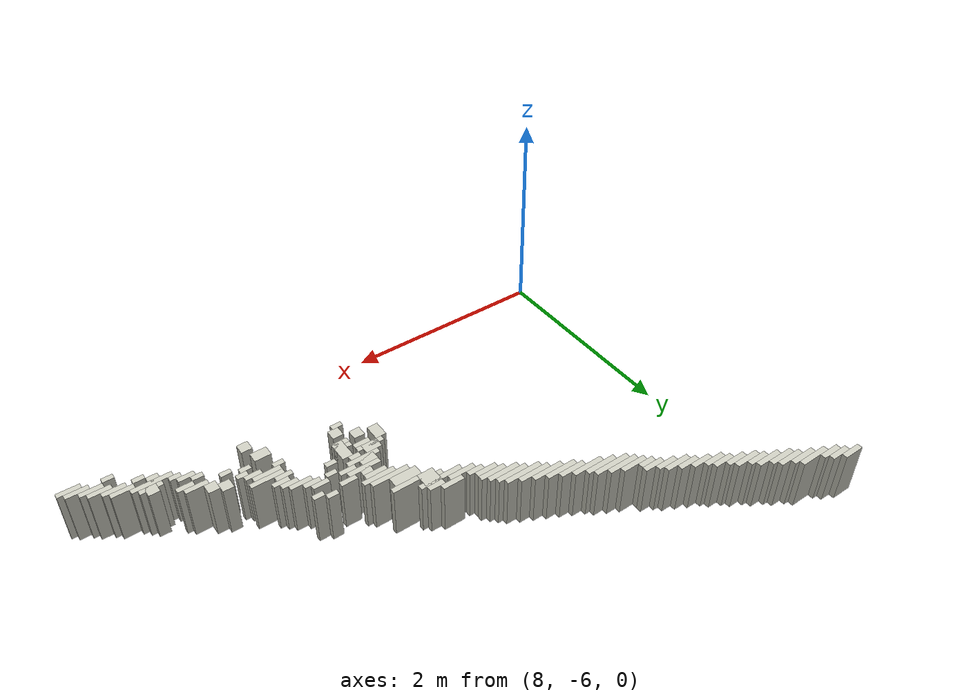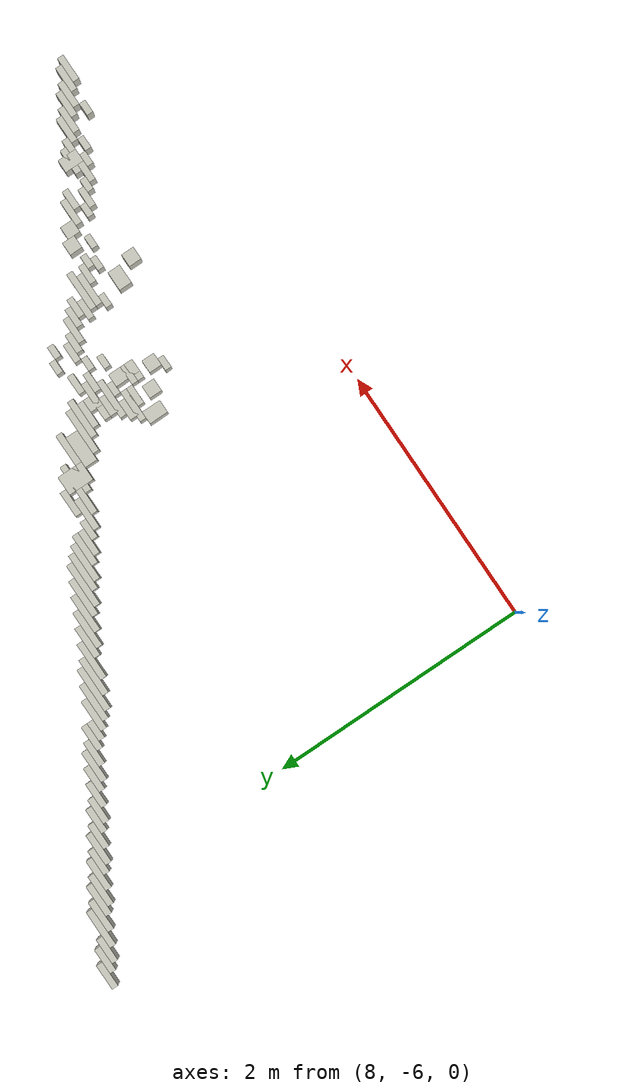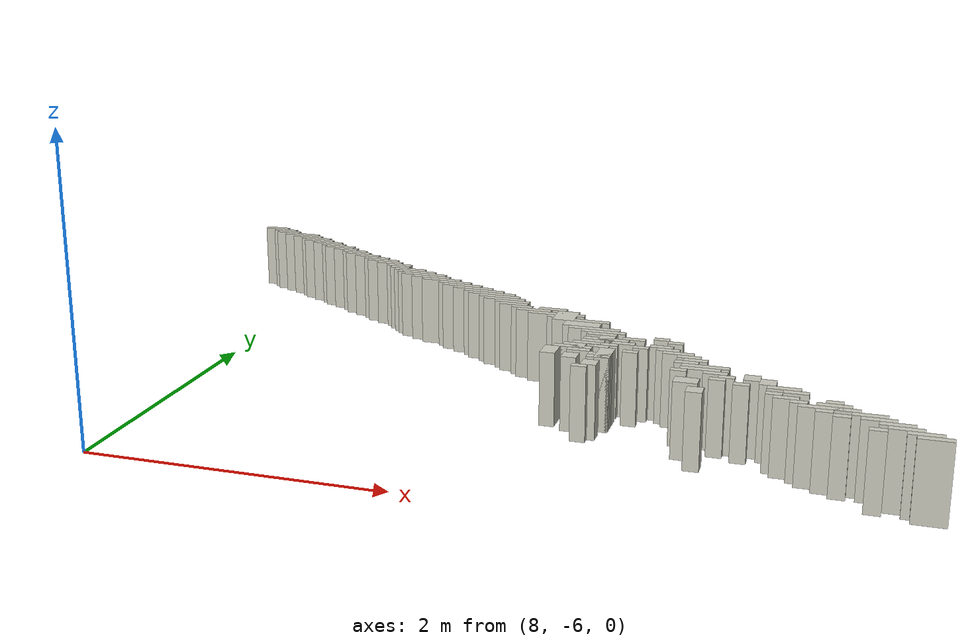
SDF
<sdf version="1.7">
 <world name="my_map_world">
  <model name="wall_197">
   <static>1</static>
   <pose>7.5 -2.175 0.25 0 -0 0</pose>
   <link name="link">
    <collision name="collision"><geometry><box><size>0.2 0.05 0.5</size></box></geometry></collision>
    <visual name="visual">
     <geometry><box><size>0.2 0.05 0.5</size></box></geometry>
     <material>
      <script><uri>file://media/materials/scripts/gazebo.material</uri><name>Gazebo/PaintedWall</name></script>
     </material>
    </visual>
   </link>
  </model>
  <model name="wall_199">
   <static>1</static>
   <pose>7.6 -2.225 0.25 0 -0 0</pose>
   <link name="link">
    <collision name="collision"><geometry><box><size>0.2 0.05 0.5</size></box></geometry></collision>
    <visual name="visual">
     <geometry><box><size>0.2 0.05 0.5</size></box></geometry>
     <material>
      <script><uri>file://media/materials/scripts/gazebo.material</uri><name>Gazebo/PaintedWall</name></script>
     </material>
    </visual>
   </link>
  </model>
  <model name="wall_200">
   <static>1</static>
   <pose>7.65 -2.275 0.25 0 -0 0</pose>
   <link name="link">
    <collision name="collision"><geometry><box><size>0.2 0.05 0.5</size></box></geometry></collision>
    <visual name="visual">
     <geometry><box><size>0.2 0.05 0.5</size></box></geometry>
     <material>
      <script><uri>file://media/materials/scripts/gazebo.material</uri><name>Gazebo/PaintedWall</name></script>
     </material>
    </visual>
   </link>
  </model>
  <model name="wall_202">
   <static>1</static>
   <pose>7.8 -2.325 0.25 0 -0 0</pose>
   <link name="link">
    <collision name="collision"><geometry><box><size>0.3 0.05 0.5</size></box></geometry></collision>
    <visual name="visual">
     <geometry><box><size>0.3 0.05 0.5</size></box></geometry>
     <material>
      <script><uri>file://media/materials/scripts/gazebo.material</uri><name>Gazebo/PaintedWall</name></script>
     </material>
    </visual>
   </link>
  </model>
  <model name="wall_204">
   <static>1</static>
   <pose>7.875 -2.375 0.25 0 -0 0</pose>
   <link name="link">
    <collision name="collision"><geometry><box><size>0.25 0.05 0.5</size></box></geometry></collision>
    <visual name="visual">
     <geometry><box><size>0.25 0.05 0.5</size></box></geometry>
     <material>
      <script><uri>file://media/materials/scripts/gazebo.material</uri><name>Gazebo/PaintedWall</name></script>
     </material>
    </visual>
   </link>
  </model>
  <model name="wall_206">
   <static>1</static>
   <pose>7.975 -2.425 0.25 0 -0 0</pose>
   <link name="link">
    <collision name="collision"><geometry><box><size>0.25 0.05 0.5</size></box></geometry></collision>
    <visual name="visual">
     <geometry><box><size>0.25 0.05 0.5</size></box></geometry>
     <material>
      <script><uri>file://media/materials/scripts/gazebo.material</uri><name>Gazebo/PaintedWall</name></script>
     </material>
    </visual>
   </link>
  </model>
  <model name="wall_207">
   <static>1</static>
   <pose>8.025 -2.475 0.25 0 -0 0</pose>
   <link name="link">
    <collision name="collision"><geometry><box><size>0.25 0.05 0.5</size></box></geometry></collision>
    <visual name="visual">
     <geometry><box><size>0.25 0.05 0.5</size></box></geometry>
     <material>
      <script><uri>file://media/materials/scripts/gazebo.material</uri><name>Gazebo/PaintedWall</name></script>
     </material>
    </visual>
   </link>
  </model>
  <model name="wall_210">
   <static>1</static>
   <pose>8.125 -2.525 0.25 0 -0 0</pose>
   <link name="link">
    <collision name="collision"><geometry><box><size>0.25 0.05 0.5</size></box></geometry></collision>
    <visual name="visual">
     <geometry><box><size>0.25 0.05 0.5</size></box></geometry>
     <material>
      <script><uri>file://media/materials/scripts/gazebo.material</uri><name>Gazebo/PaintedWall</name></script>
     </material>
    </visual>
   </link>
  </model>
  <model name="wall_211">
   <static>1</static>
   <pose>8.2 -2.575 0.25 0 -0 0</pose>
   <link name="link">
    <collision name="collision"><geometry><box><size>0.2 0.05 0.5</size></box></geometry></collision>
    <visual name="visual">
     <geometry><box><size>0.2 0.05 0.5</size></box></geometry>
     <material>
      <script><uri>file://media/materials/scripts/gazebo.material</uri><name>Gazebo/PaintedWall</name></script>
     </material>
    </visual>
   </link>
  </model>
  <model name="wall_214">
   <static>1</static>
   <pose>8.275 -2.625 0.25 0 -0 0</pose>
   <link name="link">
    <collision name="collision"><geometry><box><size>0.25 0.05 0.5</size></box></geometry></collision>
    <visual name="visual">
     <geometry><box><size>0.25 0.05 0.5</size></box></geometry>
     <material>
      <script><uri>file://media/materials/scripts/gazebo.material</uri><name>Gazebo/PaintedWall</name></script>
     </material>
    </visual>
   </link>
  </model>
  <model name="wall_216">
   <static>1</static>
   <pose>8.35 -2.675 0.25 0 -0 0</pose>
   <link name="link">
    <collision name="collision"><geometry><box><size>0.2 0.05 0.5</size></box></geometry></collision>
    <visual name="visual">
     <geometry><box><size>0.2 0.05 0.5</size></box></geometry>
     <material>
      <script><uri>file://media/materials/scripts/gazebo.material</uri><name>Gazebo/PaintedWall</name></script>
     </material>
    </visual>
   </link>
  </model>
  <model name="wall_217">
   <static>1</static>
   <pose>8.45 -2.725 0.25 0 -0 0</pose>
   <link name="link">
    <collision name="collision"><geometry><box><size>0.2 0.05 0.5</size></box></geometry></collision>
    <visual name="visual">
     <geometry><box><size>0.2 0.05 0.5</size></box></geometry>
     <material>
      <script><uri>file://media/materials/scripts/gazebo.material</uri><name>Gazebo/PaintedWall</name></script>
     </material>
    </visual>
   </link>
  </model>
  <model name="wall_221">
   <static>1</static>
   <pose>8.5 -2.775 0.25 0 -0 0</pose>
   <link name="link">
    <collision name="collision"><geometry><box><size>0.2 0.05 0.5</size></box></geometry></collision>
    <visual name="visual">
     <geometry><box><size>0.2 0.05 0.5</size></box></geometry>
     <material>
      <script><uri>file://media/materials/scripts/gazebo.material</uri><name>Gazebo/PaintedWall</name></script>
     </material>
    </visual>
   </link>
  </model>
  <model name="wall_224">
   <static>1</static>
   <pose>8.6 -2.825 0.25 0 -0 0</pose>
   <link name="link">
    <collision name="collision"><geometry><box><size>0.2 0.05 0.5</size></box></geometry></collision>
    <visual name="visual">
     <geometry><box><size>0.2 0.05 0.5</size></box></geometry>
     <material>
      <script><uri>file://media/materials/scripts/gazebo.material</uri><name>Gazebo/PaintedWall</name></script>
     </material>
    </visual>
   </link>
  </model>
  <model name="wall_227">
   <static>1</static>
   <pose>8.7 -2.875 0.25 0 -0 0</pose>
   <link name="link">
    <collision name="collision"><geometry><box><size>0.2 0.05 0.5</size></box></geometry></collision>
    <visual name="visual">
     <geometry><box><size>0.2 0.05 0.5</size></box></geometry>
     <material>
      <script><uri>file://media/materials/scripts/gazebo.material</uri><name>Gazebo/PaintedWall</name></script>
     </material>
    </visual>
   </link>
  </model>
  <model name="wall_230">
   <static>1</static>
   <pose>8.775 -2.925 0.25 0 -0 0</pose>
   <link name="link">
    <collision name="collision"><geometry><box><size>0.25 0.05 0.5</size></box></geometry></collision>
    <visual name="visual">
     <geometry><box><size>0.25 0.05 0.5</size></box></geometry>
     <material>
      <script><uri>file://media/materials/scripts/gazebo.material</uri><name>Gazebo/PaintedWall</name></script>
     </material>
    </visual>
   </link>
  </model>
  <model name="wall_234">
   <static>1</static>
   <pose>8.85 -2.975 0.25 0 -0 0</pose>
   <link name="link">
    <collision name="collision"><geometry><box><size>0.2 0.05 0.5</size></box></geometry></collision>
    <visual name="visual">
     <geometry><box><size>0.2 0.05 0.5</size></box></geometry>
     <material>
      <script><uri>file://media/materials/scripts/gazebo.material</uri><name>Gazebo/PaintedWall</name></script>
     </material>
    </visual>
   </link>
  </model>
  <model name="wall_237">
   <static>1</static>
   <pose>8.95 -3.025 0.25 0 -0 0</pose>
   <link name="link">
    <collision name="collision"><geometry><box><size>0.2 0.05 0.5</size></box></geometry></collision>
    <visual name="visual">
     <geometry><box><size>0.2 0.05 0.5</size></box></geometry>
     <material>
      <script><uri>file://media/materials/scripts/gazebo.material</uri><name>Gazebo/PaintedWall</name></script>
     </material>
    </visual>
   </link>
  </model>
  <model name="wall_240">
   <static>1</static>
   <pose>8.975 -3.075 0.25 0 -0 0</pose>
   <link name="link">
    <collision name="collision"><geometry><box><size>0.15 0.05 0.5</size></box></geometry></collision>
    <visual name="visual">
     <geometry><box><size>0.15 0.05 0.5</size></box></geometry>
     <material>
      <script><uri>file://media/materials/scripts/gazebo.material</uri><name>Gazebo/PaintedWall</name></script>
     </material>
    </visual>
   </link>
  </model>
  <model name="wall_243">
   <static>1</static>
   <pose>9.075 -3.125 0.25 0 -0 0</pose>
   <link name="link">
    <collision name="collision"><geometry><box><size>0.25 0.05 0.5</size></box></geometry></collision>
    <visual name="visual">
     <geometry><box><size>0.25 0.05 0.5</size></box></geometry>
     <material>
      <script><uri>file://media/materials/scripts/gazebo.material</uri><name>Gazebo/PaintedWall</name></script>
     </material>
    </visual>
   </link>
  </model>
  <model name="wall_245">
   <static>1</static>
   <pose>9.15 -3.175 0.25 0 -0 0</pose>
   <link name="link">
    <collision name="collision"><geometry><box><size>0.3 0.05 0.5</size></box></geometry></collision>
    <visual name="visual">
     <geometry><box><size>0.3 0.05 0.5</size></box></geometry>
     <material>
      <script><uri>file://media/materials/scripts/gazebo.material</uri><name>Gazebo/PaintedWall</name></script>
     </material>
    </visual>
   </link>
  </model>
  <model name="wall_248">
   <static>1</static>
   <pose>9.225 -3.225 0.25 0 -0 0</pose>
   <link name="link">
    <collision name="collision"><geometry><box><size>0.35 0.05 0.5</size></box></geometry></collision>
    <visual name="visual">
     <geometry><box><size>0.35 0.05 0.5</size></box></geometry>
     <material>
      <script><uri>file://media/materials/scripts/gazebo.material</uri><name>Gazebo/PaintedWall</name></script>
     </material>
    </visual>
   </link>
  </model>
  <model name="wall_251">
   <static>1</static>
   <pose>9.3 -3.275 0.25 0 -0 0</pose>
   <link name="link">
    <collision name="collision"><geometry><box><size>0.3 0.05 0.5</size></box></geometry></collision>
    <visual name="visual">
     <geometry><box><size>0.3 0.05 0.5</size></box></geometry>
     <material>
      <script><uri>file://media/materials/scripts/gazebo.material</uri><name>Gazebo/PaintedWall</name></script>
     </material>
    </visual>
   </link>
  </model>
  <model name="wall_253">
   <static>1</static>
   <pose>9.4 -3.325 0.25 0 -0 0</pose>
   <link name="link">
    <collision name="collision"><geometry><box><size>0.3 0.05 0.5</size></box></geometry></collision>
    <visual name="visual">
     <geometry><box><size>0.3 0.05 0.5</size></box></geometry>
     <material>
      <script><uri>file://media/materials/scripts/gazebo.material</uri><name>Gazebo/PaintedWall</name></script>
     </material>
    </visual>
   </link>
  </model>
  <model name="wall_256">
   <static>1</static>
   <pose>9.525 -3.375 0.25 0 -0 0</pose>
   <link name="link">
    <collision name="collision"><geometry><box><size>0.25 0.05 0.5</size></box></geometry></collision>
    <visual name="visual">
     <geometry><box><size>0.25 0.05 0.5</size></box></geometry>
     <material>
      <script><uri>file://media/materials/scripts/gazebo.material</uri><name>Gazebo/PaintedWall</name></script>
     </material>
    </visual>
   </link>
  </model>
  <model name="wall_260">
   <static>1</static>
   <pose>9.6 -3.425 0.25 0 -0 0</pose>
   <link name="link">
    <collision name="collision"><geometry><box><size>0.3 0.05 0.5</size></box></geometry></collision>
    <visual name="visual">
     <geometry><box><size>0.3 0.05 0.5</size></box></geometry>
     <material>
      <script><uri>file://media/materials/scripts/gazebo.material</uri><name>Gazebo/PaintedWall</name></script>
     </material>
    </visual>
   </link>
  </model>
  <model name="wall_262">
   <static>1</static>
   <pose>9.7 -3.475 0.25 0 -0 0</pose>
   <link name="link">
    <collision name="collision"><geometry><box><size>0.3 0.05 0.5</size></box></geometry></collision>
    <visual name="visual">
     <geometry><box><size>0.3 0.05 0.5</size></box></geometry>
     <material>
      <script><uri>file://media/materials/scripts/gazebo.material</uri><name>Gazebo/PaintedWall</name></script>
     </material>
    </visual>
   </link>
  </model>
  <model name="wall_264">
   <static>1</static>
   <pose>9.8 -3.525 0.25 0 -0 0</pose>
   <link name="link">
    <collision name="collision"><geometry><box><size>0.3 0.05 0.5</size></box></geometry></collision>
    <visual name="visual">
     <geometry><box><size>0.3 0.05 0.5</size></box></geometry>
     <material>
      <script><uri>file://media/materials/scripts/gazebo.material</uri><name>Gazebo/PaintedWall</name></script>
     </material>
    </visual>
   </link>
  </model>
  <model name="wall_267">
   <static>1</static>
   <pose>9.875 -3.575 0.25 0 -0 0</pose>
   <link name="link">
    <collision name="collision"><geometry><box><size>0.35 0.05 0.5</size></box></geometry></collision>
    <visual name="visual">
     <geometry><box><size>0.35 0.05 0.5</size></box></geometry>
     <material>
      <script><uri>file://media/materials/scripts/gazebo.material</uri><name>Gazebo/PaintedWall</name></script>
     </material>
    </visual>
   </link>
  </model>
  <model name="wall_269">
   <static>1</static>
   <pose>9.95 -3.625 0.25 0 -0 0</pose>
   <link name="link">
    <collision name="collision"><geometry><box><size>0.3 0.05 0.5</size></box></geometry></collision>
    <visual name="visual">
     <geometry><box><size>0.3 0.05 0.5</size></box></geometry>
     <material>
      <script><uri>file://media/materials/scripts/gazebo.material</uri><name>Gazebo/PaintedWall</name></script>
     </material>
    </visual>
   </link>
  </model>
  <model name="wall_272">
   <static>1</static>
   <pose>10 -3.675 0.25 0 -0 0</pose>
   <link name="link">
    <collision name="collision"><geometry><box><size>0.3 0.05 0.5</size></box></geometry></collision>
    <visual name="visual">
     <geometry><box><size>0.3 0.05 0.5</size></box></geometry>
     <material>
      <script><uri>file://media/materials/scripts/gazebo.material</uri><name>Gazebo/PaintedWall</name></script>
     </material>
    </visual>
   </link>
  </model>
  <model name="wall_274">
   <static>1</static>
   <pose>10.075 -3.725 0.25 0 -0 0</pose>
   <link name="link">
    <collision name="collision"><geometry><box><size>0.25 0.05 0.5</size></box></geometry></collision>
    <visual name="visual">
     <geometry><box><size>0.25 0.05 0.5</size></box></geometry>
     <material>
      <script><uri>file://media/materials/scripts/gazebo.material</uri><name>Gazebo/PaintedWall</name></script>
     </material>
    </visual>
   </link>
  </model>
  <model name="wall_277">
   <static>1</static>
   <pose>10.1 -3.775 0.25 0 -0 0</pose>
   <link name="link">
    <collision name="collision"><geometry><box><size>0.2 0.05 0.5</size></box></geometry></collision>
    <visual name="visual">
     <geometry><box><size>0.2 0.05 0.5</size></box></geometry>
     <material>
      <script><uri>file://media/materials/scripts/gazebo.material</uri><name>Gazebo/PaintedWall</name></script>
     </material>
    </visual>
   </link>
  </model>
  <model name="wall_279">
   <static>1</static>
   <pose>10.175 -3.825 0.25 0 -0 0</pose>
   <link name="link">
    <collision name="collision"><geometry><box><size>0.15 0.05 0.5</size></box></geometry></collision>
    <visual name="visual">
     <geometry><box><size>0.15 0.05 0.5</size></box></geometry>
     <material>
      <script><uri>file://media/materials/scripts/gazebo.material</uri><name>Gazebo/PaintedWall</name></script>
     </material>
    </visual>
   </link>
  </model>
  <model name="wall_280">
   <static>1</static>
   <pose>10.4 -3.825 0.25 0 -0 0</pose>
   <link name="link">
    <collision name="collision"><geometry><box><size>0.2 0.05 0.5</size></box></geometry></collision>
    <visual name="visual">
     <geometry><box><size>0.2 0.05 0.5</size></box></geometry>
     <material>
      <script><uri>file://media/materials/scripts/gazebo.material</uri><name>Gazebo/PaintedWall</name></script>
     </material>
    </visual>
   </link>
  </model>
  <model name="wall_282">
   <static>1</static>
   <pose>10.275 -3.875 0.25 0 -0 0</pose>
   <link name="link">
    <collision name="collision"><geometry><box><size>0.25 0.05 0.5</size></box></geometry></collision>
    <visual name="visual">
     <geometry><box><size>0.25 0.05 0.5</size></box></geometry>
     <material>
      <script><uri>file://media/materials/scripts/gazebo.material</uri><name>Gazebo/PaintedWall</name></script>
     </material>
    </visual>
   </link>
  </model>
  <model name="wall_283">
   <static>1</static>
   <pose>10.525 -3.95 0.25 0 -0 0</pose>
   <link name="link">
    <collision name="collision"><geometry><box><size>0.15 0.2 0.5</size></box></geometry></collision>
    <visual name="visual">
     <geometry><box><size>0.15 0.2 0.5</size></box></geometry>
     <material>
      <script><uri>file://media/materials/scripts/gazebo.material</uri><name>Gazebo/PaintedWall</name></script>
     </material>
    </visual>
   </link>
  </model>
  <model name="wall_286">
   <static>1</static>
   <pose>10.45 -3.925 0.25 0 -0 0</pose>
   <link name="link">
    <collision name="collision"><geometry><box><size>0.4 0.05 0.5</size></box></geometry></collision>
    <visual name="visual">
     <geometry><box><size>0.4 0.05 0.5</size></box></geometry>
     <material>
      <script><uri>file://media/materials/scripts/gazebo.material</uri><name>Gazebo/PaintedWall</name></script>
     </material>
    </visual>
   </link>
  </model>
  <model name="wall_288">
   <static>1</static>
   <pose>10.5 -3.975 0.25 0 -0 0</pose>
   <link name="link">
    <collision name="collision"><geometry><box><size>0.2 0.05 0.5</size></box></geometry></collision>
    <visual name="visual">
     <geometry><box><size>0.2 0.05 0.5</size></box></geometry>
     <material>
      <script><uri>file://media/materials/scripts/gazebo.material</uri><name>Gazebo/PaintedWall</name></script>
     </material>
    </visual>
   </link>
  </model>
  <model name="wall_290">
   <static>1</static>
   <pose>10.725 -4.025 0.25 0 -0 0</pose>
   <link name="link">
    <collision name="collision"><geometry><box><size>0.25 0.05 0.5</size></box></geometry></collision>
    <visual name="visual">
     <geometry><box><size>0.25 0.05 0.5</size></box></geometry>
     <material>
      <script><uri>file://media/materials/scripts/gazebo.material</uri><name>Gazebo/PaintedWall</name></script>
     </material>
    </visual>
   </link>
  </model>
  <model name="wall_292">
   <static>1</static>
   <pose>10.675 -4.1 0.25 0 -0 0</pose>
   <link name="link">
    <collision name="collision"><geometry><box><size>0.25 0.1 0.5</size></box></geometry></collision>
    <visual name="visual">
     <geometry><box><size>0.25 0.1 0.5</size></box></geometry>
     <material>
      <script><uri>file://media/materials/scripts/gazebo.material</uri><name>Gazebo/PaintedWall</name></script>
     </material>
    </visual>
   </link>
  </model>
  <model name="wall_296">
   <static>1</static>
   <pose>10.775 -4.175 0.25 0 -0 0</pose>
   <link name="link">
    <collision name="collision"><geometry><box><size>0.35 0.05 0.5</size></box></geometry></collision>
    <visual name="visual">
     <geometry><box><size>0.35 0.05 0.5</size></box></geometry>
     <material>
      <script><uri>file://media/materials/scripts/gazebo.material</uri><name>Gazebo/PaintedWall</name></script>
     </material>
    </visual>
   </link>
  </model>
  <model name="wall_299">
   <static>1</static>
   <pose>10.85 -4.225 0.25 0 -0 0</pose>
   <link name="link">
    <collision name="collision"><geometry><box><size>0.3 0.05 0.5</size></box></geometry></collision>
    <visual name="visual">
     <geometry><box><size>0.3 0.05 0.5</size></box></geometry>
     <material>
      <script><uri>file://media/materials/scripts/gazebo.material</uri><name>Gazebo/PaintedWall</name></script>
     </material>
    </visual>
   </link>
  </model>
  <model name="wall_303">
   <static>1</static>
   <pose>10.85 -4.275 0.25 0 -0 0</pose>
   <link name="link">
    <collision name="collision"><geometry><box><size>0.2 0.05 0.5</size></box></geometry></collision>
    <visual name="visual">
     <geometry><box><size>0.2 0.05 0.5</size></box></geometry>
     <material>
      <script><uri>file://media/materials/scripts/gazebo.material</uri><name>Gazebo/PaintedWall</name></script>
     </material>
    </visual>
   </link>
  </model>
  <model name="wall_304">
   <static>1</static>
   <pose>11.25 -4.275 0.25 0 -0 0</pose>
   <link name="link">
    <collision name="collision"><geometry><box><size>0.1 0.05 0.5</size></box></geometry></collision>
    <visual name="visual">
     <geometry><box><size>0.1 0.05 0.5</size></box></geometry>
     <material>
      <script><uri>file://media/materials/scripts/gazebo.material</uri><name>Gazebo/PaintedWall</name></script>
     </material>
    </visual>
   </link>
  </model>
  <model name="wall_306">
   <static>1</static>
   <pose>10.9 -4.35 0.25 0 -0 0</pose>
   <link name="link">
    <collision name="collision"><geometry><box><size>0.1 0.1 0.5</size></box></geometry></collision>
    <visual name="visual">
     <geometry><box><size>0.1 0.1 0.5</size></box></geometry>
     <material>
      <script><uri>file://media/materials/scripts/gazebo.material</uri><name>Gazebo/PaintedWall</name></script>
     </material>
    </visual>
   </link>
  </model>
  <model name="wall_307">
   <static>1</static>
   <pose>11.075 -4.325 0.25 0 -0 0</pose>
   <link name="link">
    <collision name="collision"><geometry><box><size>0.15 0.05 0.5</size></box></geometry></collision>
    <visual name="visual">
     <geometry><box><size>0.15 0.05 0.5</size></box></geometry>
     <material>
      <script><uri>file://media/materials/scripts/gazebo.material</uri><name>Gazebo/PaintedWall</name></script>
     </material>
    </visual>
   </link>
  </model>
  <model name="wall_308">
   <static>1</static>
   <pose>11.35 -4.325 0.25 0 -0 0</pose>
   <link name="link">
    <collision name="collision"><geometry><box><size>0.1 0.05 0.5</size></box></geometry></collision>
    <visual name="visual">
     <geometry><box><size>0.1 0.05 0.5</size></box></geometry>
     <material>
      <script><uri>file://media/materials/scripts/gazebo.material</uri><name>Gazebo/PaintedWall</name></script>
     </material>
    </visual>
   </link>
  </model>
  <model name="wall_310">
   <static>1</static>
   <pose>10.9 -4.375 0.25 0 -0 0</pose>
   <link name="link">
    <collision name="collision"><geometry><box><size>0.3 0.05 0.5</size></box></geometry></collision>
    <visual name="visual">
     <geometry><box><size>0.3 0.05 0.5</size></box></geometry>
     <material>
      <script><uri>file://media/materials/scripts/gazebo.material</uri><name>Gazebo/PaintedWall</name></script>
     </material>
    </visual>
   </link>
  </model>
  <model name="wall_313">
   <static>1</static>
   <pose>10.825 -4.45 0.25 0 -0 0</pose>
   <link name="link">
    <collision name="collision"><geometry><box><size>0.15 0.1 0.5</size></box></geometry></collision>
    <visual name="visual">
     <geometry><box><size>0.15 0.1 0.5</size></box></geometry>
     <material>
      <script><uri>file://media/materials/scripts/gazebo.material</uri><name>Gazebo/PaintedWall</name></script>
     </material>
    </visual>
   </link>
  </model>
  <model name="wall_314">
   <static>1</static>
   <pose>11.025 -4.425 0.25 0 -0 0</pose>
   <link name="link">
    <collision name="collision"><geometry><box><size>0.15 0.05 0.5</size></box></geometry></collision>
    <visual name="visual">
     <geometry><box><size>0.15 0.05 0.5</size></box></geometry>
     <material>
      <script><uri>file://media/materials/scripts/gazebo.material</uri><name>Gazebo/PaintedWall</name></script>
     </material>
    </visual>
   </link>
  </model>
  <model name="wall_315">
   <static>1</static>
   <pose>11.275 -4.425 0.25 0 -0 0</pose>
   <link name="link">
    <collision name="collision"><geometry><box><size>0.15 0.05 0.5</size></box></geometry></collision>
    <visual name="visual">
     <geometry><box><size>0.15 0.05 0.5</size></box></geometry>
     <material>
      <script><uri>file://media/materials/scripts/gazebo.material</uri><name>Gazebo/PaintedWall</name></script>
     </material>
    </visual>
   </link>
  </model>
  <model name="wall_317">
   <static>1</static>
   <pose>10.85 -4.475 0.25 0 -0 0</pose>
   <link name="link">
    <collision name="collision"><geometry><box><size>0.3 0.05 0.5</size></box></geometry></collision>
    <visual name="visual">
     <geometry><box><size>0.3 0.05 0.5</size></box></geometry>
     <material>
      <script><uri>file://media/materials/scripts/gazebo.material</uri><name>Gazebo/PaintedWall</name></script>
     </material>
    </visual>
   </link>
  </model>
  <model name="wall_318">
   <static>1</static>
   <pose>11.15 -4.475 0.25 0 -0 0</pose>
   <link name="link">
    <collision name="collision"><geometry><box><size>0.1 0.05 0.5</size></box></geometry></collision>
    <visual name="visual">
     <geometry><box><size>0.1 0.05 0.5</size></box></geometry>
     <material>
      <script><uri>file://media/materials/scripts/gazebo.material</uri><name>Gazebo/PaintedWall</name></script>
     </material>
    </visual>
   </link>
  </model>
  <model name="wall_319">
   <static>1</static>
   <pose>11.325 -4.475 0.25 0 -0 0</pose>
   <link name="link">
    <collision name="collision"><geometry><box><size>0.15 0.05 0.5</size></box></geometry></collision>
    <visual name="visual">
     <geometry><box><size>0.15 0.05 0.5</size></box></geometry>
     <material>
      <script><uri>file://media/materials/scripts/gazebo.material</uri><name>Gazebo/PaintedWall</name></script>
     </material>
    </visual>
   </link>
  </model>
  <model name="wall_321">
   <static>1</static>
   <pose>10.725 -4.55 0.25 0 -0 0</pose>
   <link name="link">
    <collision name="collision"><geometry><box><size>0.15 0.1 0.5</size></box></geometry></collision>
    <visual name="visual">
     <geometry><box><size>0.15 0.1 0.5</size></box></geometry>
     <material>
      <script><uri>file://media/materials/scripts/gazebo.material</uri><name>Gazebo/PaintedWall</name></script>
     </material>
    </visual>
   </link>
  </model>
  <model name="wall_322">
   <static>1</static>
   <pose>10.9 -4.525 0.25 0 -0 0</pose>
   <link name="link">
    <collision name="collision"><geometry><box><size>0.1 0.05 0.5</size></box></geometry></collision>
    <visual name="visual">
     <geometry><box><size>0.1 0.05 0.5</size></box></geometry>
     <material>
      <script><uri>file://media/materials/scripts/gazebo.material</uri><name>Gazebo/PaintedWall</name></script>
     </material>
    </visual>
   </link>
  </model>
  <model name="wall_323">
   <static>1</static>
   <pose>11.4 -4.525 0.25 0 -0 0</pose>
   <link name="link">
    <collision name="collision"><geometry><box><size>0.2 0.05 0.5</size></box></geometry></collision>
    <visual name="visual">
     <geometry><box><size>0.2 0.05 0.5</size></box></geometry>
     <material>
      <script><uri>file://media/materials/scripts/gazebo.material</uri><name>Gazebo/PaintedWall</name></script>
     </material>
    </visual>
   </link>
  </model>
  <model name="wall_325">
   <static>1</static>
   <pose>10.725 -4.575 0.25 0 -0 0</pose>
   <link name="link">
    <collision name="collision"><geometry><box><size>0.25 0.05 0.5</size></box></geometry></collision>
    <visual name="visual">
     <geometry><box><size>0.25 0.05 0.5</size></box></geometry>
     <material>
      <script><uri>file://media/materials/scripts/gazebo.material</uri><name>Gazebo/PaintedWall</name></script>
     </material>
    </visual>
   </link>
  </model>
  <model name="wall_326">
   <static>1</static>
   <pose>10.95 -4.65 0.25 0 -0 0</pose>
   <link name="link">
    <collision name="collision"><geometry><box><size>0.1 0.2 0.5</size></box></geometry></collision>
    <visual name="visual">
     <geometry><box><size>0.1 0.2 0.5</size></box></geometry>
     <material>
      <script><uri>file://media/materials/scripts/gazebo.material</uri><name>Gazebo/PaintedWall</name></script>
     </material>
    </visual>
   </link>
  </model>
  <model name="wall_327">
   <static>1</static>
   <pose>11.1 -4.575 0.25 0 -0 0</pose>
   <link name="link">
    <collision name="collision"><geometry><box><size>0.1 0.05 0.5</size></box></geometry></collision>
    <visual name="visual">
     <geometry><box><size>0.1 0.05 0.5</size></box></geometry>
     <material>
      <script><uri>file://media/materials/scripts/gazebo.material</uri><name>Gazebo/PaintedWall</name></script>
     </material>
    </visual>
   </link>
  </model>
  <model name="wall_328">
   <static>1</static>
   <pose>11.475 -4.575 0.25 0 -0 0</pose>
   <link name="link">
    <collision name="collision"><geometry><box><size>0.15 0.05 0.5</size></box></geometry></collision>
    <visual name="visual">
     <geometry><box><size>0.15 0.05 0.5</size></box></geometry>
     <material>
      <script><uri>file://media/materials/scripts/gazebo.material</uri><name>Gazebo/PaintedWall</name></script>
     </material>
    </visual>
   </link>
  </model>
  <model name="wall_331">
   <static>1</static>
   <pose>10.6 -4.675 0.25 0 -0 0</pose>
   <link name="link">
    <collision name="collision"><geometry><box><size>0.1 0.15 0.5</size></box></geometry></collision>
    <visual name="visual">
     <geometry><box><size>0.1 0.15 0.5</size></box></geometry>
     <material>
      <script><uri>file://media/materials/scripts/gazebo.material</uri><name>Gazebo/PaintedWall</name></script>
     </material>
    </visual>
   </link>
  </model>
  <model name="wall_332">
   <static>1</static>
   <pose>10.775 -4.625 0.25 0 -0 0</pose>
   <link name="link">
    <collision name="collision"><geometry><box><size>0.15 0.05 0.5</size></box></geometry></collision>
    <visual name="visual">
     <geometry><box><size>0.15 0.05 0.5</size></box></geometry>
     <material>
      <script><uri>file://media/materials/scripts/gazebo.material</uri><name>Gazebo/PaintedWall</name></script>
     </material>
    </visual>
   </link>
  </model>
  <model name="wall_333">
   <static>1</static>
   <pose>11.525 -4.625 0.25 0 -0 0</pose>
   <link name="link">
    <collision name="collision"><geometry><box><size>0.15 0.05 0.5</size></box></geometry></collision>
    <visual name="visual">
     <geometry><box><size>0.15 0.05 0.5</size></box></geometry>
     <material>
      <script><uri>file://media/materials/scripts/gazebo.material</uri><name>Gazebo/PaintedWall</name></script>
     </material>
    </visual>
   </link>
  </model>
  <model name="wall_336">
   <static>1</static>
   <pose>10.925 -4.675 0.25 0 -0 0</pose>
   <link name="link">
    <collision name="collision"><geometry><box><size>0.15 0.05 0.5</size></box></geometry></collision>
    <visual name="visual">
     <geometry><box><size>0.15 0.05 0.5</size></box></geometry>
     <material>
      <script><uri>file://media/materials/scripts/gazebo.material</uri><name>Gazebo/PaintedWall</name></script>
     </material>
    </visual>
   </link>
  </model>
  <model name="wall_337">
   <static>1</static>
   <pose>11.475 -4.675 0.25 0 -0 0</pose>
   <link name="link">
    <collision name="collision"><geometry><box><size>0.15 0.05 0.5</size></box></geometry></collision>
    <visual name="visual">
     <geometry><box><size>0.15 0.05 0.5</size></box></geometry>
     <material>
      <script><uri>file://media/materials/scripts/gazebo.material</uri><name>Gazebo/PaintedWall</name></script>
     </material>
    </visual>
   </link>
  </model>
  <model name="wall_339">
   <static>1</static>
   <pose>10.75 -4.75 0.25 0 -0 0</pose>
   <link name="link">
    <collision name="collision"><geometry><box><size>0.1 0.1 0.5</size></box></geometry></collision>
    <visual name="visual">
     <geometry><box><size>0.1 0.1 0.5</size></box></geometry>
     <material>
      <script><uri>file://media/materials/scripts/gazebo.material</uri><name>Gazebo/PaintedWall</name></script>
     </material>
    </visual>
   </link>
  </model>
  <model name="wall_340">
   <static>1</static>
   <pose>10.925 -4.725 0.25 0 -0 0</pose>
   <link name="link">
    <collision name="collision"><geometry><box><size>0.15 0.05 0.5</size></box></geometry></collision>
    <visual name="visual">
     <geometry><box><size>0.15 0.05 0.5</size></box></geometry>
     <material>
      <script><uri>file://media/materials/scripts/gazebo.material</uri><name>Gazebo/PaintedWall</name></script>
     </material>
    </visual>
   </link>
  </model>
  <model name="wall_341">
   <static>1</static>
   <pose>11.6 -4.725 0.25 0 -0 0</pose>
   <link name="link">
    <collision name="collision"><geometry><box><size>0.3 0.05 0.5</size></box></geometry></collision>
    <visual name="visual">
     <geometry><box><size>0.3 0.05 0.5</size></box></geometry>
     <material>
      <script><uri>file://media/materials/scripts/gazebo.material</uri><name>Gazebo/PaintedWall</name></script>
     </material>
    </visual>
   </link>
  </model>
  <model name="wall_343">
   <static>1</static>
   <pose>11.575 -4.775 0.25 0 -0 0</pose>
   <link name="link">
    <collision name="collision"><geometry><box><size>0.25 0.05 0.5</size></box></geometry></collision>
    <visual name="visual">
     <geometry><box><size>0.25 0.05 0.5</size></box></geometry>
     <material>
      <script><uri>file://media/materials/scripts/gazebo.material</uri><name>Gazebo/PaintedWall</name></script>
     </material>
    </visual>
   </link>
  </model>
  <model name="wall_346">
   <static>1</static>
   <pose>10.9 -4.85 0.25 0 -0 0</pose>
   <link name="link">
    <collision name="collision"><geometry><box><size>0.1 0.1 0.5</size></box></geometry></collision>
    <visual name="visual">
     <geometry><box><size>0.1 0.1 0.5</size></box></geometry>
     <material>
      <script><uri>file://media/materials/scripts/gazebo.material</uri><name>Gazebo/PaintedWall</name></script>
     </material>
    </visual>
   </link>
  </model>
  <model name="wall_347">
   <static>1</static>
   <pose>11.45 -4.825 0.25 0 -0 0</pose>
   <link name="link">
    <collision name="collision"><geometry><box><size>0.1 0.05 0.5</size></box></geometry></collision>
    <visual name="visual">
     <geometry><box><size>0.1 0.05 0.5</size></box></geometry>
     <material>
      <script><uri>file://media/materials/scripts/gazebo.material</uri><name>Gazebo/PaintedWall</name></script>
     </material>
    </visual>
   </link>
  </model>
  <model name="wall_348">
   <static>1</static>
   <pose>11.675 -4.825 0.25 0 -0 0</pose>
   <link name="link">
    <collision name="collision"><geometry><box><size>0.15 0.05 0.5</size></box></geometry></collision>
    <visual name="visual">
     <geometry><box><size>0.15 0.05 0.5</size></box></geometry>
     <material>
      <script><uri>file://media/materials/scripts/gazebo.material</uri><name>Gazebo/PaintedWall</name></script>
     </material>
    </visual>
   </link>
  </model>
  <model name="wall_349">
   <static>1</static>
   <pose>11.9 -4.85 0.25 0 -0 0</pose>
   <link name="link">
    <collision name="collision"><geometry><box><size>0.1 0.1 0.5</size></box></geometry></collision>
    <visual name="visual">
     <geometry><box><size>0.1 0.1 0.5</size></box></geometry>
     <material>
      <script><uri>file://media/materials/scripts/gazebo.material</uri><name>Gazebo/PaintedWall</name></script>
     </material>
    </visual>
   </link>
  </model>
  <model name="wall_351">
   <static>1</static>
   <pose>11.75 -4.875 0.25 0 -0 0</pose>
   <link name="link">
    <collision name="collision"><geometry><box><size>0.1 0.05 0.5</size></box></geometry></collision>
    <visual name="visual">
     <geometry><box><size>0.1 0.05 0.5</size></box></geometry>
     <material>
      <script><uri>file://media/materials/scripts/gazebo.material</uri><name>Gazebo/PaintedWall</name></script>
     </material>
    </visual>
   </link>
  </model>
  <model name="wall_352">
   <static>1</static>
   <pose>12 -4.9 0.25 0 -0 0</pose>
   <link name="link">
    <collision name="collision"><geometry><box><size>0.1 0.1 0.5</size></box></geometry></collision>
    <visual name="visual">
     <geometry><box><size>0.1 0.1 0.5</size></box></geometry>
     <material>
      <script><uri>file://media/materials/scripts/gazebo.material</uri><name>Gazebo/PaintedWall</name></script>
     </material>
    </visual>
   </link>
  </model>
  <model name="wall_355">
   <static>1</static>
   <pose>10.85 -4.925 0.25 0 -0 0</pose>
   <link name="link">
    <collision name="collision"><geometry><box><size>0.1 0.05 0.5</size></box></geometry></collision>
    <visual name="visual">
     <geometry><box><size>0.1 0.05 0.5</size></box></geometry>
     <material>
      <script><uri>file://media/materials/scripts/gazebo.material</uri><name>Gazebo/PaintedWall</name></script>
     </material>
    </visual>
   </link>
  </model>
  <model name="wall_356">
   <static>1</static>
   <pose>11.7 -4.925 0.25 0 -0 0</pose>
   <link name="link">
    <collision name="collision"><geometry><box><size>0.1 0.05 0.5</size></box></geometry></collision>
    <visual name="visual">
     <geometry><box><size>0.1 0.05 0.5</size></box></geometry>
     <material>
      <script><uri>file://media/materials/scripts/gazebo.material</uri><name>Gazebo/PaintedWall</name></script>
     </material>
    </visual>
   </link>
  </model>
  <model name="wall_358">
   <static>1</static>
   <pose>11.525 -5 0.25 0 -0 0</pose>
   <link name="link">
    <collision name="collision"><geometry><box><size>0.15 0.1 0.5</size></box></geometry></collision>
    <visual name="visual">
     <geometry><box><size>0.15 0.1 0.5</size></box></geometry>
     <material>
      <script><uri>file://media/materials/scripts/gazebo.material</uri><name>Gazebo/PaintedWall</name></script>
     </material>
    </visual>
   </link>
  </model>
  <model name="wall_359">
   <static>1</static>
   <pose>11.85 -4.975 0.25 0 -0 0</pose>
   <link name="link">
    <collision name="collision"><geometry><box><size>0.1 0.05 0.5</size></box></geometry></collision>
    <visual name="visual">
     <geometry><box><size>0.1 0.05 0.5</size></box></geometry>
     <material>
      <script><uri>file://media/materials/scripts/gazebo.material</uri><name>Gazebo/PaintedWall</name></script>
     </material>
    </visual>
   </link>
  </model>
  <model name="wall_360">
   <static>1</static>
   <pose>12.1 -4.975 0.25 0 -0 0</pose>
   <link name="link">
    <collision name="collision"><geometry><box><size>0.2 0.05 0.5</size></box></geometry></collision>
    <visual name="visual">
     <geometry><box><size>0.2 0.05 0.5</size></box></geometry>
     <material>
      <script><uri>file://media/materials/scripts/gazebo.material</uri><name>Gazebo/PaintedWall</name></script>
     </material>
    </visual>
   </link>
  </model>
  <model name="wall_362">
   <static>1</static>
   <pose>12.175 -5.025 0.25 0 -0 0</pose>
   <link name="link">
    <collision name="collision"><geometry><box><size>0.15 0.05 0.5</size></box></geometry></collision>
    <visual name="visual">
     <geometry><box><size>0.15 0.05 0.5</size></box></geometry>
     <material>
      <script><uri>file://media/materials/scripts/gazebo.material</uri><name>Gazebo/PaintedWall</name></script>
     </material>
    </visual>
   </link>
  </model>
  <model name="wall_365">
   <static>1</static>
   <pose>12.05 -5.075 0.25 0 -0 0</pose>
   <link name="link">
    <collision name="collision"><geometry><box><size>0.1 0.05 0.5</size></box></geometry></collision>
    <visual name="visual">
     <geometry><box><size>0.1 0.05 0.5</size></box></geometry>
     <material>
      <script><uri>file://media/materials/scripts/gazebo.material</uri><name>Gazebo/PaintedWall</name></script>
     </material>
    </visual>
   </link>
  </model>
  <model name="wall_367">
   <static>1</static>
   <pose>11.6 -5.15 0.25 0 -0 0</pose>
   <link name="link">
    <collision name="collision"><geometry><box><size>0.1 0.1 0.5</size></box></geometry></collision>
    <visual name="visual">
     <geometry><box><size>0.1 0.1 0.5</size></box></geometry>
     <material>
      <script><uri>file://media/materials/scripts/gazebo.material</uri><name>Gazebo/PaintedWall</name></script>
     </material>
    </visual>
   </link>
  </model>
  <model name="wall_368">
   <static>1</static>
   <pose>12.125 -5.125 0.25 0 -0 0</pose>
   <link name="link">
    <collision name="collision"><geometry><box><size>0.15 0.05 0.5</size></box></geometry></collision>
    <visual name="visual">
     <geometry><box><size>0.15 0.05 0.5</size></box></geometry>
     <material>
      <script><uri>file://media/materials/scripts/gazebo.material</uri><name>Gazebo/PaintedWall</name></script>
     </material>
    </visual>
   </link>
  </model>
  <model name="wall_369">
   <static>1</static>
   <pose>12.4 -5.175 0.25 0 -0 0</pose>
   <link name="link">
    <collision name="collision"><geometry><box><size>0.1 0.15 0.5</size></box></geometry></collision>
    <visual name="visual">
     <geometry><box><size>0.1 0.15 0.5</size></box></geometry>
     <material>
      <script><uri>file://media/materials/scripts/gazebo.material</uri><name>Gazebo/PaintedWall</name></script>
     </material>
    </visual>
   </link>
  </model>
  <model name="wall_371">
   <static>1</static>
   <pose>12.2 -5.175 0.25 0 -0 0</pose>
   <link name="link">
    <collision name="collision"><geometry><box><size>0.1 0.05 0.5</size></box></geometry></collision>
    <visual name="visual">
     <geometry><box><size>0.1 0.05 0.5</size></box></geometry>
     <material>
      <script><uri>file://media/materials/scripts/gazebo.material</uri><name>Gazebo/PaintedWall</name></script>
     </material>
    </visual>
   </link>
  </model>
  <model name="wall_372">
   <static>1</static>
   <pose>12.4 -5.175 0.25 0 -0 0</pose>
   <link name="link">
    <collision name="collision"><geometry><box><size>0.2 0.05 0.5</size></box></geometry></collision>
    <visual name="visual">
     <geometry><box><size>0.2 0.05 0.5</size></box></geometry>
     <material>
      <script><uri>file://media/materials/scripts/gazebo.material</uri><name>Gazebo/PaintedWall</name></script>
     </material>
    </visual>
   </link>
  </model>
  <model name="wall_374">
   <static>1</static>
   <pose>12.375 -5.225 0.25 0 -0 0</pose>
   <link name="link">
    <collision name="collision"><geometry><box><size>0.35 0.05 0.5</size></box></geometry></collision>
    <visual name="visual">
     <geometry><box><size>0.35 0.05 0.5</size></box></geometry>
     <material>
      <script><uri>file://media/materials/scripts/gazebo.material</uri><name>Gazebo/PaintedWall</name></script>
     </material>
    </visual>
   </link>
  </model>
  <model name="wall_376">
   <static>1</static>
   <pose>12.35 -5.275 0.25 0 -0 0</pose>
   <link name="link">
    <collision name="collision"><geometry><box><size>0.1 0.05 0.5</size></box></geometry></collision>
    <visual name="visual">
     <geometry><box><size>0.1 0.05 0.5</size></box></geometry>
     <material>
      <script><uri>file://media/materials/scripts/gazebo.material</uri><name>Gazebo/PaintedWall</name></script>
     </material>
    </visual>
   </link>
  </model>
  <model name="wall_377">
   <static>1</static>
   <pose>12.6 -5.275 0.25 0 -0 0</pose>
   <link name="link">
    <collision name="collision"><geometry><box><size>0.2 0.05 0.5</size></box></geometry></collision>
    <visual name="visual">
     <geometry><box><size>0.2 0.05 0.5</size></box></geometry>
     <material>
      <script><uri>file://media/materials/scripts/gazebo.material</uri><name>Gazebo/PaintedWall</name></script>
     </material>
    </visual>
   </link>
  </model>
  <model name="wall_379">
   <static>1</static>
   <pose>12.45 -5.325 0.25 0 -0 0</pose>
   <link name="link">
    <collision name="collision"><geometry><box><size>0.1 0.05 0.5</size></box></geometry></collision>
    <visual name="visual">
     <geometry><box><size>0.1 0.05 0.5</size></box></geometry>
     <material>
      <script><uri>file://media/materials/scripts/gazebo.material</uri><name>Gazebo/PaintedWall</name></script>
     </material>
    </visual>
   </link>
  </model>
  <model name="wall_380">
   <static>1</static>
   <pose>12.65 -5.325 0.25 0 -0 0</pose>
   <link name="link">
    <collision name="collision"><geometry><box><size>0.2 0.05 0.5</size></box></geometry></collision>
    <visual name="visual">
     <geometry><box><size>0.2 0.05 0.5</size></box></geometry>
     <material>
      <script><uri>file://media/materials/scripts/gazebo.material</uri><name>Gazebo/PaintedWall</name></script>
     </material>
    </visual>
   </link>
  </model>
  <model name="wall_383">
   <static>1</static>
   <pose>12.75 -5.375 0.25 0 -0 0</pose>
   <link name="link">
    <collision name="collision"><geometry><box><size>0.2 0.05 0.5</size></box></geometry></collision>
    <visual name="visual">
     <geometry><box><size>0.2 0.05 0.5</size></box></geometry>
     <material>
      <script><uri>file://media/materials/scripts/gazebo.material</uri><name>Gazebo/PaintedWall</name></script>
     </material>
    </visual>
   </link>
  </model>
  <model name="wall_385">
   <static>1</static>
   <pose>12.8 -5.425 0.25 0 -0 0</pose>
   <link name="link">
    <collision name="collision"><geometry><box><size>0.2 0.05 0.5</size></box></geometry></collision>
    <visual name="visual">
     <geometry><box><size>0.2 0.05 0.5</size></box></geometry>
     <material>
      <script><uri>file://media/materials/scripts/gazebo.material</uri><name>Gazebo/PaintedWall</name></script>
     </material>
    </visual>
   </link>
  </model>
  <model name="wall_387">
   <static>1</static>
   <pose>12.65 -5.475 0.25 0 -0 0</pose>
   <link name="link">
    <collision name="collision"><geometry><box><size>0.1 0.05 0.5</size></box></geometry></collision>
    <visual name="visual">
     <geometry><box><size>0.1 0.05 0.5</size></box></geometry>
     <material>
      <script><uri>file://media/materials/scripts/gazebo.material</uri><name>Gazebo/PaintedWall</name></script>
     </material>
    </visual>
   </link>
  </model>
  <model name="wall_388">
   <static>1</static>
   <pose>12.9 -5.475 0.25 0 -0 0</pose>
   <link name="link">
    <collision name="collision"><geometry><box><size>0.2 0.05 0.5</size></box></geometry></collision>
    <visual name="visual">
     <geometry><box><size>0.2 0.05 0.5</size></box></geometry>
     <material>
      <script><uri>file://media/materials/scripts/gazebo.material</uri><name>Gazebo/PaintedWall</name></script>
     </material>
    </visual>
   </link>
  </model>
  <model name="wall_390">
   <static>1</static>
   <pose>12.95 -5.525 0.25 0 -0 0</pose>
   <link name="link">
    <collision name="collision"><geometry><box><size>0.2 0.05 0.5</size></box></geometry></collision>
    <visual name="visual">
     <geometry><box><size>0.2 0.05 0.5</size></box></geometry>
     <material>
      <script><uri>file://media/materials/scripts/gazebo.material</uri><name>Gazebo/PaintedWall</name></script>
     </material>
    </visual>
   </link>
  </model>
 </world>
</sdf>
